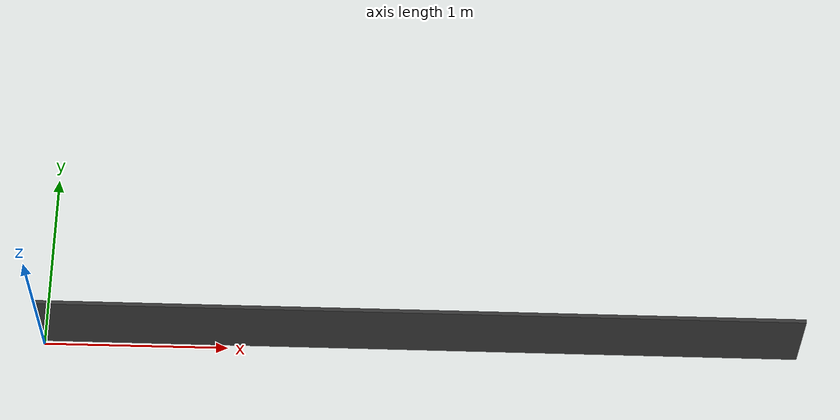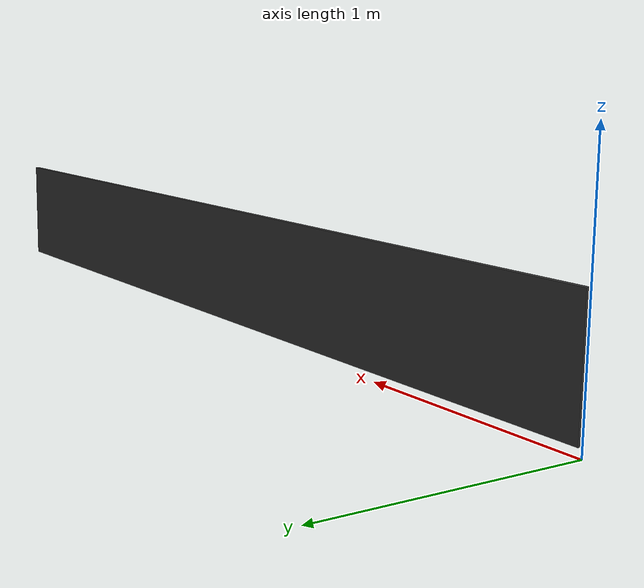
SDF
<?xml version="1.0" ?>
<sdf version="1.7">
    <model name="ConveyorBelt">

        <!-- 原本履帶表面 -->
        <link name="belt_surface">
            <pose>0 0 0.04 0 0 0</pose> <!-- 將履帶整體抬高，讓滾筒不會落到地面下 -->
            <inertial>
                <mass>1.0</mass>
                <inertia>
                    <ixx>0.01</ixx>
                    <iyy>0.01</iyy>
                    <izz>0.01</izz>
                    <ixy>0</ixy>
                    <ixz>0</ixz>
                    <iyz>0</iyz>
                </inertia>
            </inertial>
            <visual name="visual">
                <geometry>
                    <mesh>
                        <uri>model://ConveyorBelt/meshes/ConveyorBelt_belt_surface.stl</uri>
                        <scale>0.001 0.001 0.001</scale>
                    </mesh>
                </geometry>
                <material>
                    <ambient>0.2 0.2 0.2 1</ambient>
                    <diffuse>0.2 0.2 0.2 1</diffuse>
                </material>
            </visual>
            <collision name="collision">
                <geometry>
                    <mesh>
                        <uri>model://ConveyorBelt/meshes/ConveyorBelt_belt_surface.stl</uri>
                        <scale>0.001 0.001 0.001</scale>
                    </mesh>
                </geometry>
                <surface>
                    <friction>
                        <ode>
                            <mu>50</mu>
                            <mu2>50</mu2>
                        </ode>
                    </friction>
                </surface>
            </collision>
        </link>

        <plugin name="ros2_conveyorbelt_plugin" filename="libROS2ConveyorBeltPlugin.so">
            <ros><namespace></namespace></ros>
            <max_velocity>1.0</max_velocity>
            <publish_rate>1000</publish_rate>
        </plugin>

    </model>
</sdf>
